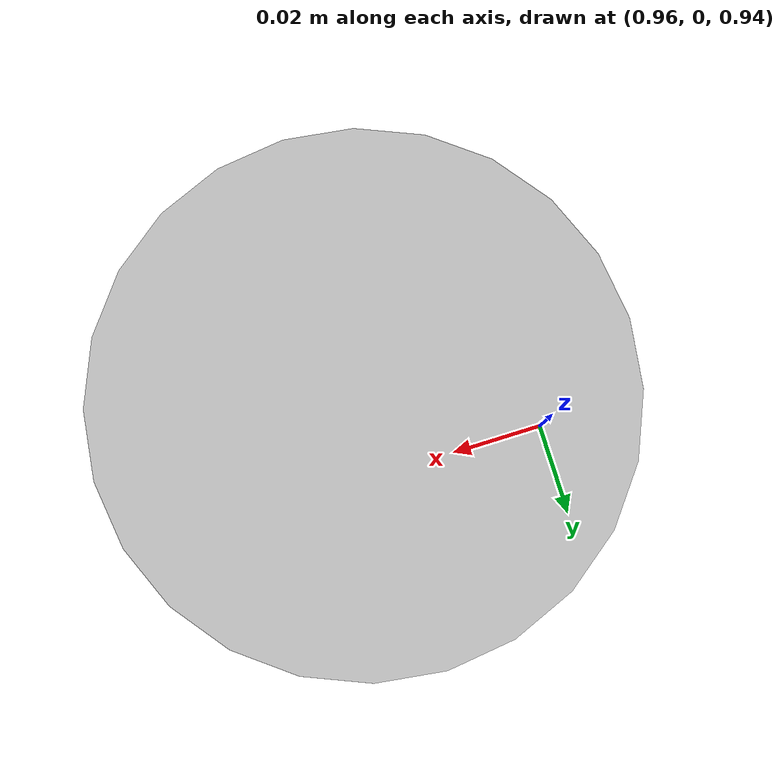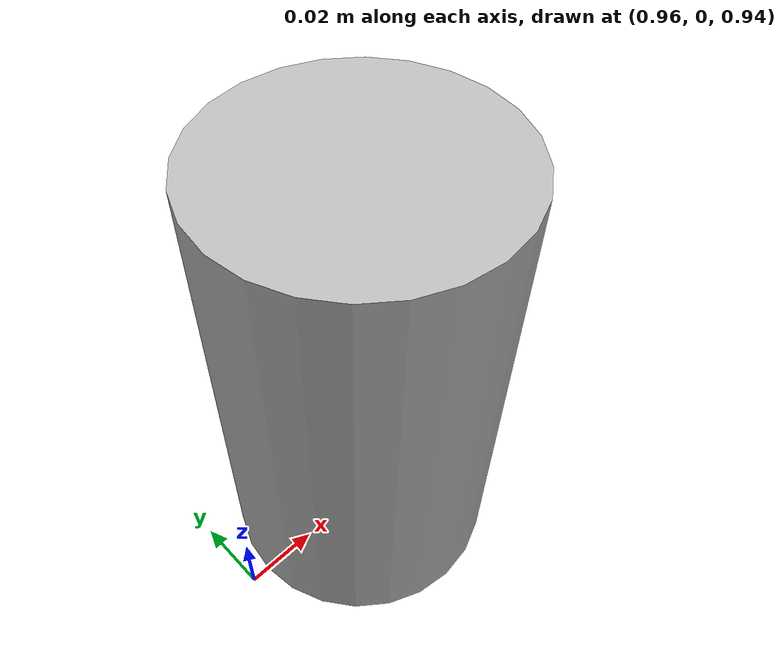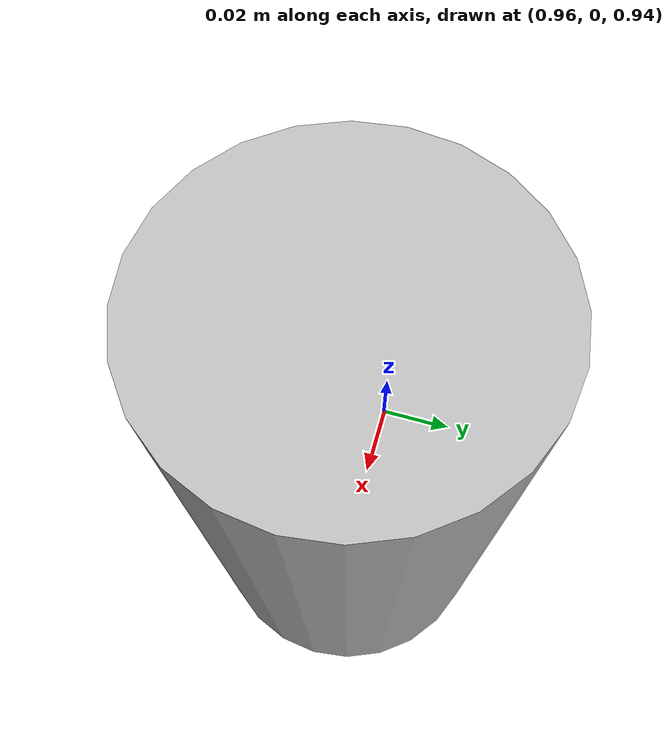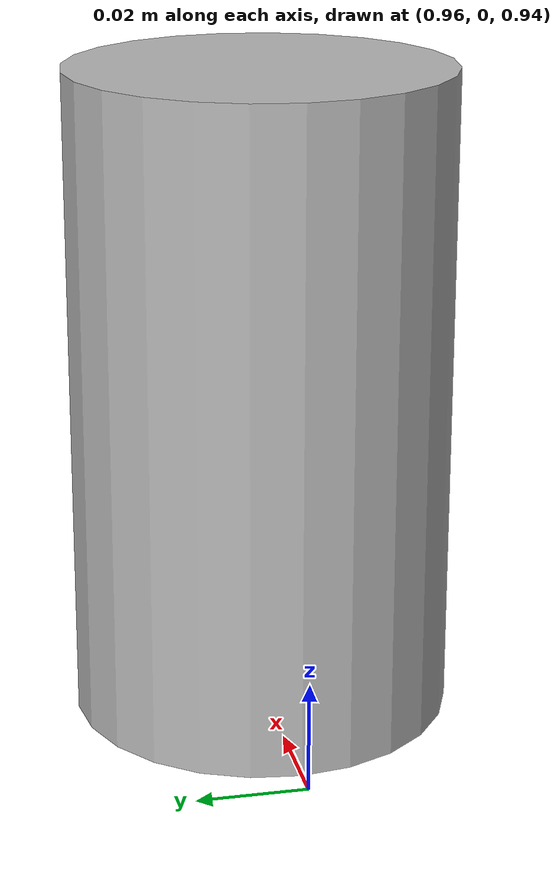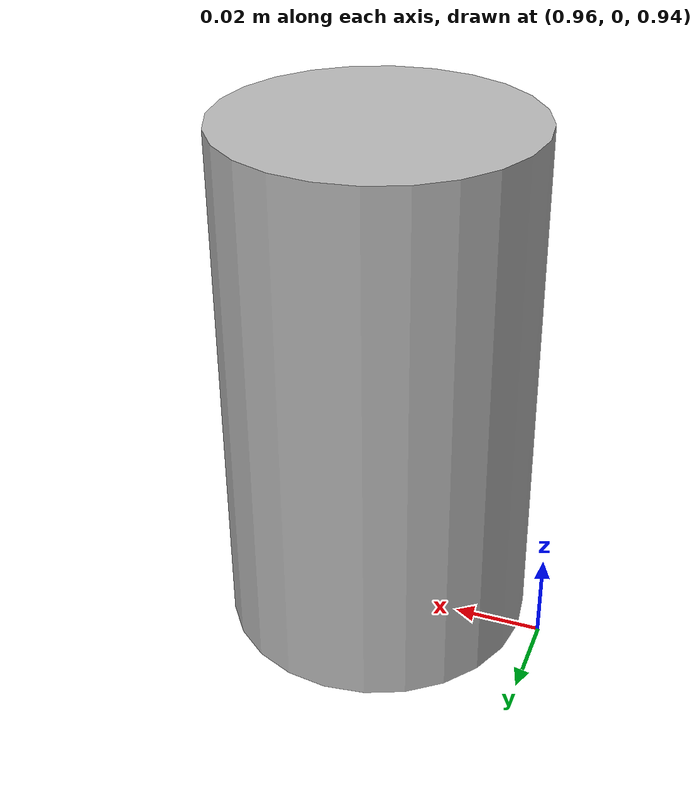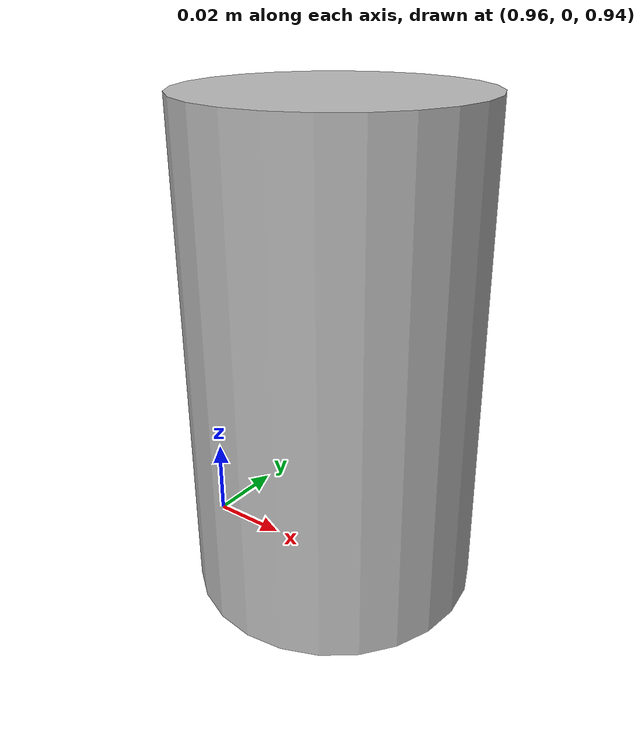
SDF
<?xml version="1.0" ?>
<sdf version="1.5">
  <world name="default">
    <include>
      <uri>model://sun</uri>
    </include>
    <include>
      <uri>model://ground_plane</uri>
    </include>
    <include>
      <name>beer0</name>
      <uri>model://beer</uri>
      <static>true</static>
      <pose>1 0 1 0 0 0</pose>
    </include>
  </world>
</sdf>

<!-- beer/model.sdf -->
<sdf version='1.4'>
  <model name="beer">
    <link name='link'>
      <pose>0 0 0 0 0 0</pose>
      <inertial>
        <mass>0.390</mass>
        <inertia>
          <ixx>0.00058</ixx>
          <ixy>0</ixy>
          <ixz>0</ixz>
          <iyy>0.00058</iyy>
          <iyz>0</iyz>
          <izz>0.00025</izz>
        </inertia>
      </inertial>
      <collision name='collision'>
        <geometry>
          <cylinder>
            <radius>0.03500</radius>
            <length>0.12000</length>
          </cylinder>
        </geometry>
      </collision>

      <visual name='visual'>
        <geometry>
          <cylinder>
            <radius>0.03500</radius>
            <length>0.12000</length>
          </cylinder>
        </geometry>

        <material>
          <script>
            <uri>model://beer/materials/scripts</uri>
            <uri>model://beer/materials/textures</uri>
            <name>Beer/Diffuse</name>
          </script>
        </material>
      </visual>
    </link>
  </model>
</sdf>
